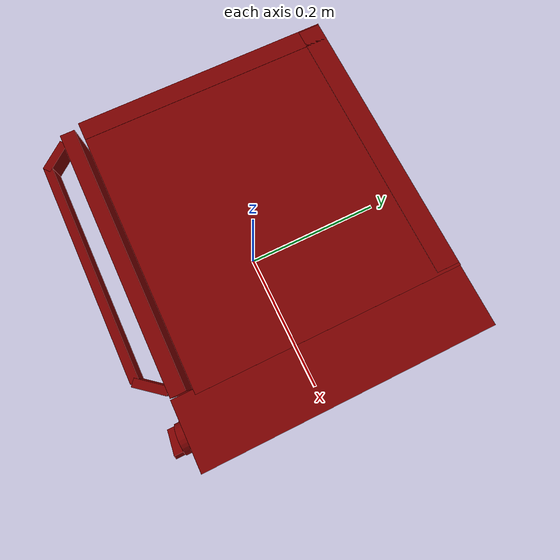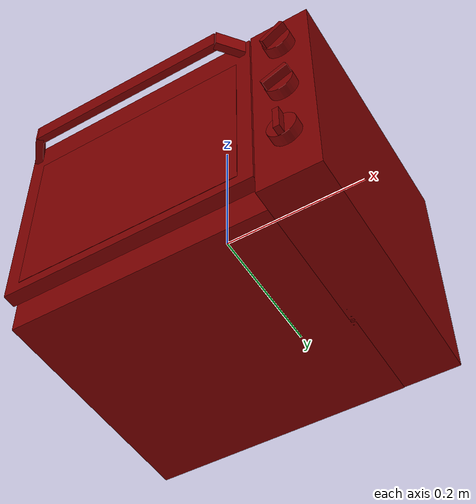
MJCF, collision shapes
<?xml version='1.0' encoding='UTF-8'?>
<mujoco model="model">
  <option timestep="0.002" gravity="0.0 0.0 -9.81"/>
  <compiler angle="radian"/>
  <asset>
    <mesh file="visuals/door.obj" name="door_vis"/>
    <mesh file="visuals/knob_function.obj" name="knob_function_vis"/>
    <mesh file="visuals/knob_temp.obj" name="knob_temp_vis"/>
    <mesh file="visuals/knob_time.obj" name="knob_time_vis"/>
    <mesh file="visuals/rack0.obj" name="rack0_vis"/>
    <mesh file="visuals/Body001.obj" name="Body001_vis"/>
    <mesh file="visuals/window.obj" name="window_vis"/>
    <texture file="visuals/T_BC001.png" name="Body001_material" type="2d"/>
    <material name="Body001_material" rgba="1 1 1 1.0" texture="Body001_material" shininess="0.141421377658844" specular="0.71"/>
    <texture file="visuals/T_BC001.png" name="door_material" type="2d"/>
    <material name="door_material" rgba="1 1 1 1.0" texture="door_material" shininess="0.141421377658844" specular="0.81"/>
    <texture file="visuals/T_BC001.png" name="window_material" type="2d"/>
    <material name="window_material" rgba="1 1 1 0.800000011920929" texture="window_material" shininess="0.141421377658844" specular="0.3103448502657381"/>
    <texture file="visuals/T_BC001.png" name="knob_function_material" type="2d"/>
    <material name="knob_function_material" rgba="1 1 1 1.0" texture="knob_function_material" shininess="0.141421377658844" specular="0.3103448502657381"/>
    <texture file="visuals/T_BC001.png" name="knob_temp_material" type="2d"/>
    <material name="knob_temp_material" rgba="1 1 1 1.0" texture="knob_temp_material" shininess="0.141421377658844" specular="0.3103448502657381"/>
    <texture file="visuals/T_BC001.png" name="knob_time_material" type="2d"/>
    <material name="knob_time_material" rgba="1 1 1 1.0" texture="knob_time_material" shininess="0.141421377658844" specular="0.3103448502657381"/>
    <texture file="visuals/T_BC001.png" name="rack0_material" type="2d"/>
    <material name="rack0_material" rgba="1 1 1 1.0" texture="rack0_material" shininess="0.141421377658844" specular="10"/>
  </asset>
  <default>
    <default class="visual">
      <geom conaffinity="0" contype="0" group="1" type="mesh"/>
    </default>
    <default class="collision">
      <geom group="0" rgba="0.5 0 0 0.5"/>
    </default>
    <default class="spawn">
      <geom group="0" rgba="1 1 1 0.5" contype="0" conaffinity="0"/>
      <site group="0" rgba="1 1 1 0.5"/>
    </default>
    <default class="region">
      <geom group="1" conaffinity="0" contype="0" rgba="0 1 0 0"/>
    </default>
  </default>
  <worldbody>
    <body>
      <body name="object">
        <geom mesh="Body001_vis" type="mesh" solimp="0.998 0.998 0.001" solref="0.001 1" friction="0.95 0.3 0.1" class="visual" material="Body001_material"/>
        <geom class="collision" type="box" pos="-0.2039780169725418 0.02983897738158703 0.02243412286043167" size="0.012105473317205906 0.1663031131029129 0.14247852563858032" quat="1.0 0.0 0.0 0.0"/>
        <geom class="collision" type="box" pos="-0.03818407282233238 0.03018273413181305 -0.1412220299243927" size="0.17800679802894592 0.16640129685401917 0.02400331199169159" quat="1.0 0.0 0.0 0.0"/>
        <geom class="collision" type="box" pos="-0.03884332999587059 0.18181969225406647 0.018248729407787323" size="0.17590925097465515 0.01430332288146019 0.14666391909122467" quat="1.0 0.0 0.0 0.0"/>
        <geom class="collision" type="box" pos="0.17522159218788147 0.01642169989645481 -0.0005831364542245865" size="0.040945589542388916 0.1794576495885849 0.16464221477508545" quat="1.0 0.0 0.0 0.0"/>
        <geom class="collision" type="box" pos="-0.0372847244143486 0.02990785986185074 0.15587566792964935" size="0.1778637319803238 0.16637198626995087 0.00870265532284975" quat="1.0 0.0 0.0 0.0"/>
        <geom class="collision" type="box" pos="-0.18916746973991394 0.011614857241511345 0.00022486294619739056" size="0.0054938457906246185 0.12701140344142914 0.015096782706677914" quat="1.0 0.0 0.0 0.0"/>
        <geom class="collision" type="box" pos="-0.18958930671215057 0.011614857241511345 -0.03713352233171463" size="0.00549384905025363 0.1270114928483963 0.015096793882548809" quat="1.0 0.0 0.0 0.0"/>
        <geom class="collision" type="box" pos="0.1319262534379959 0.011614857241511345 -0.03713352233171463" size="0.005493852309882641 0.12701156735420227 0.015096805058419704" quat="1.0 0.0 0.0 0.0"/>
        <geom class="collision" type="box" pos="0.1319262534379959 0.011614857241511345 0.000516153872013092" size="0.005493855569511652 0.12701164186000824 0.015096817165613174" quat="1.0 0.0 0.0 0.0"/>
        <body name="door">
          <joint axis="1.0 0.0 0.0" pos="-0.04003842920064926 -0.1410684585571289 -0.13804776966571808" limited="true" name="door_joint" range="0.0 1.3707963267948966" type="hinge" damping="1" frictionloss="1" armature=".01" stiffness="0.05" springref="-30"/>
          <geom mesh="door_vis" type="mesh" solimp="0.998 0.998 0.001" solref="0.001 1" friction="0.95 0.3 0.1" class="visual" material="door_material"/>
          <geom class="collision" type="box" pos="-0.04012495279312134 -0.15384447574615479 0.013099052011966705" size="0.17264078557491302 0.00944715365767479 0.14747866988182068" quat="1.0 0.0 0.0 0.0" name="door_main"/>
          <geom class="collision" type="box" pos="0.11159782111644745 -0.1786157786846161 0.14393894374370575" size="0.02029900625348091 0.005172309931367636 0.013131000101566315" quat="6.815625397393887e-08 0.9027569890022278 0.43015095591545105 3.2475490741035173e-08"/>
          <geom class="collision" type="box" pos="-0.04032646492123604 -0.19220224022865295 0.14393894374370575" size="0.14049792289733887 0.005172271281480789 0.01313092466443777" quat="1.0 0.0 0.0 0.0" name="door_handle_main"/>
          <geom class="collision" type="box" pos="-0.1917712241411209 -0.17856614291667938 0.14393894374370575" size="0.02029900625348091 0.005172309931367636 0.013131000101566315" quat="0.9027569890022278 0.0 0.0 -0.43015095591545105"/>
          <body name="window">
            <geom mesh="window_vis" type="mesh" solimp="0.998 0.998 0.001" solref="0.001 1" friction="0.95 0.3 0.1" class="visual" material="window_material"/>
            <geom class="collision" type="box" pos="-0.040320515632629395 -0.16180023550987244 -0.0015764464624226093" size="0.15256385505199432 0.002023582113906741 0.11862297356128693" quat="1.0 0.0 0.0 0.0"/>
          </body>
        </body>
        <body name="knob_function">
          <joint axis="0.0 1.0 0.0" pos="0.17913579940795898 -0.17962169647216797 -0.0010332679376006126" limited="true" name="knob_function_joint" range="0.0 3.961897402027128" type="hinge" damping="0.05" frictionloss="0.75" armature="1"/>
          <geom mesh="knob_function_vis" type="mesh" solimp="0.998 0.998 0.001" solref="0.001 1" friction="0.95 0.3 0.1" class="visual" material="knob_function_material"/>
          <geom class="collision" type="cylinder" pos="0.17913579940795898 -0.17404791712760925 -0.0007199756801128387" size="0.019237585365772247 0.007395401131361723" quat="0.7071068286895752 0.7071067690849304 0.0 0.0" friction="100 0.5 0.01"/>
          <geom class="collision" type="box" pos="0.17912283539772034 -0.1865006983280182 -0.0009346618317067623" size="0.004002058412879705 0.006478690076619387 0.01813562400639057" quat="0.549201488494873 -2.0483782855670873e-13 -0.8356899619102478 -1.1228221552528339e-07" name="knob_function_main" friction="100 0.5 0.01"/>
        </body>
        <body name="knob_temp">
          <joint axis="0.0 1.0 0.0" pos="0.17913579940795898 -0.1798498034477234 0.09543565660715103" limited="true" name="knob_temp_joint" range="0.0 4.4156830075456535" type="hinge" damping="0.05" frictionloss="0.75" armature="1"/>
          <geom mesh="knob_temp_vis" type="mesh" solimp="0.998 0.998 0.001" solref="0.001 1" friction="0.95 0.3 0.1" class="visual" material="knob_temp_material"/>
          <geom class="collision" type="cylinder" pos="0.17913579940795898 -0.17404791712760925 0.09452540427446365" size="0.019237585365772247 0.007395401131361723" quat="0.7071068286895752 0.7071067690849304 0.0 0.0" friction="100 0.5 0.01"/>
          <geom class="collision" type="box" pos="0.1793217957019806 -0.1865006983280182 0.09543345123529434" size="0.004002058412879705 0.006478690076619387 0.01813562400639057" quat="0.46072059869766235 2.18099057694085e-14 -0.8875452280044556 -1.1924949205877056e-07" name="knob_temp_main" friction="100 0.5 0.01"/>
        </body>
        <body name="knob_time">
          <joint axis="0.0 1.0 0.0" pos="0.17913579940795898 -0.17962771654129028 -0.09254294633865356" limited="true" name="knob_time_joint" range="0.0 4.014257279586958" type="hinge" damping="0.05" armature="1" frictionloss="0.75"/>
          <geom mesh="knob_time_vis" type="mesh" solimp="0.998 0.998 0.001" solref="0.001 1" friction="0.95 0.3 0.1" class="visual" material="knob_time_material"/>
          <geom class="collision" type="cylinder" pos="0.17913579940795898 -0.17404791712760925 -0.09294281899929047" size="0.019237585365772247 0.007395401131361723" quat="0.7071068286895752 0.7071067690849304 0.0 0.0" friction="100 0.5 0.01"/>
          <geom class="collision" type="box" pos="0.17882436513900757 -0.1865006983280182 -0.0927700400352478" size="0.004002058412879705 0.006478690076619387 0.01813572086393833" quat="1.0 0.0 0.0 0.0" name="knob_time_main" friction="100 0.5 0.01"/>
        </body>
        <body name="rack0">
          <geom class="region" name="reg_rack0" type="box" pos="-0.02807624638080597 0.008608207106590271 0.05945906229317188" size="0.13636839187145233 0.1237162778377533 0.08605147509276867"/>
          <joint axis="0.0 -1.0 0.0" pos="-0.02863200753927231 0.008345536887645721 -0.02480681613087654" limited="true" name="rack0_joint" range="0.0 0.20" type="slide" damping="1" frictionloss="1" armature=".01" stiffness="0.05"/>
          <geom mesh="rack0_vis" type="mesh" solimp="0.998 0.998 0.001" solref="0.001 1" friction="0.95 0.3 0.1" class="visual" material="rack0_material"/>
          <geom class="collision" type="box" pos="-0.028050508350133896 0.008563034236431122 -0.028848711401224136" size="0.13570380210876465 0.12284987419843674 0.0030371074099093676" quat="1.0 0.0 0.0 0.0"/>
          <geom class="collision" type="box" pos="-0.18249717354774475 0.008482776582241058 -0.019134825095534325" size="0.008577265776693821 0.12300089001655579 0.001667578355409205" quat="1.0 0.0 0.0 0.0"/>
          <geom class="collision" type="box" pos="-0.16859766840934753 0.008476205170154572 -0.0239250548183918" size="0.008577265776693821 0.12300733476877213 0.0016675618244335055" quat="0.9440328478813171 -2.0632491271044273e-08 0.3298514783382416 7.209132402152818e-09"/>
          <geom class="collision" type="box" pos="0.11243189126253128 0.008476205170154572 -0.0239250585436821" size="0.008577265776693821 0.12300733476877213 0.0016675632214173675" quat="7.127249546101666e-08 -0.9440328478813171 -2.4903092921135794e-08 -0.3298514783382416"/>
          <geom class="collision" type="box" pos="0.12554088234901428 0.008482776582241058 -0.019134825095534325" size="0.008577265776693821 0.12300089001655579 0.0016675770748406649" quat="1.0 0.0 0.0 0.0"/>
        </body>
        <geom class="region" name="reg_int" type="box" pos="-0.028990082442760468 0.013765305280685425 0.014842260628938675" size="0.1541737521290779 0.15403681790828705 0.13272071799635887"/>
        <geom class="region" name="reg_main" type="box" pos="-3.725290298461914e-09 0.015343382954597473 0.0" size="0.2174328396320343 0.1828493753671646 0.1662253419160843"/>
      </body>
    </body>
  </worldbody>
  <actuator>
    <motor name="door_joint_actuator" joint="door_joint" gear="50"/>
    <motor name="knob_function_joint_actuator" joint="knob_function_joint" gear="50"/>
    <motor name="knob_temp_joint_actuator" joint="knob_temp_joint" gear="50"/>
    <motor name="knob_time_joint_actuator" joint="knob_time_joint" gear="50"/>
    <motor name="rack0_joint_actuator" joint="rack0_joint" gear="50"/>
  </actuator>
</mujoco>
